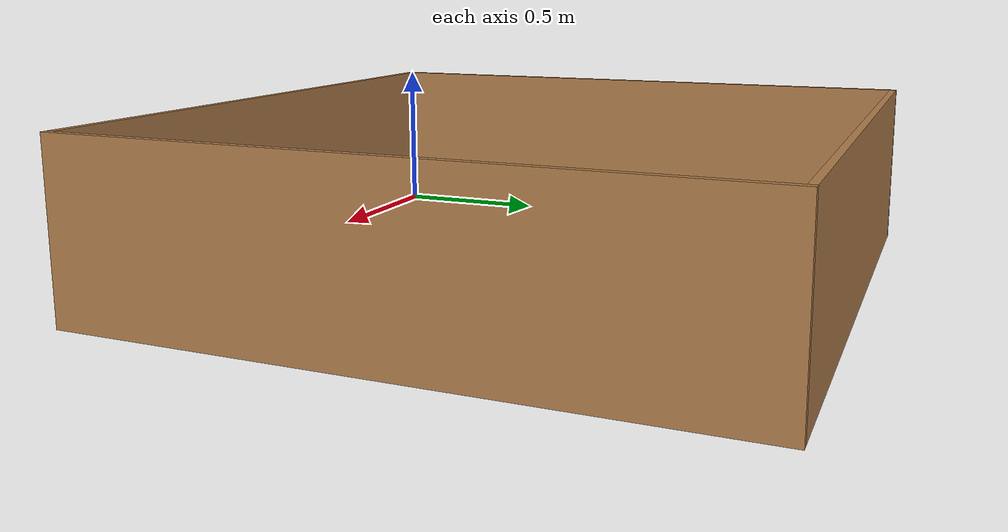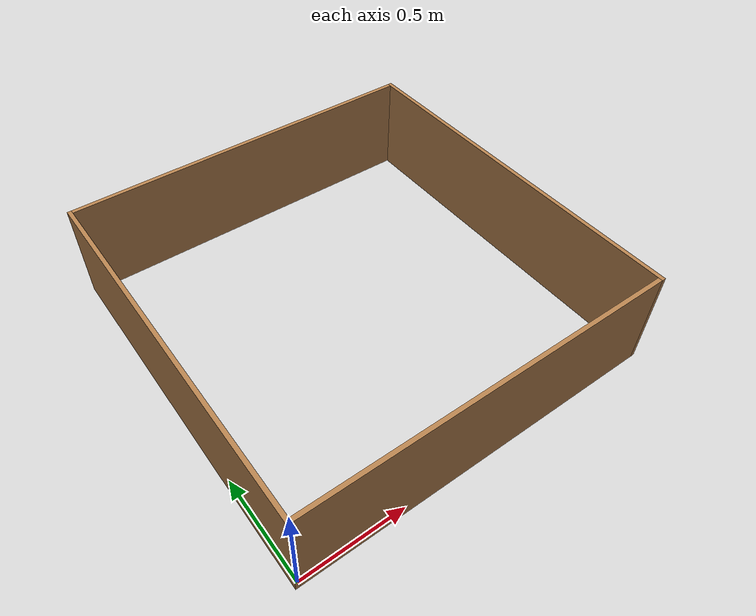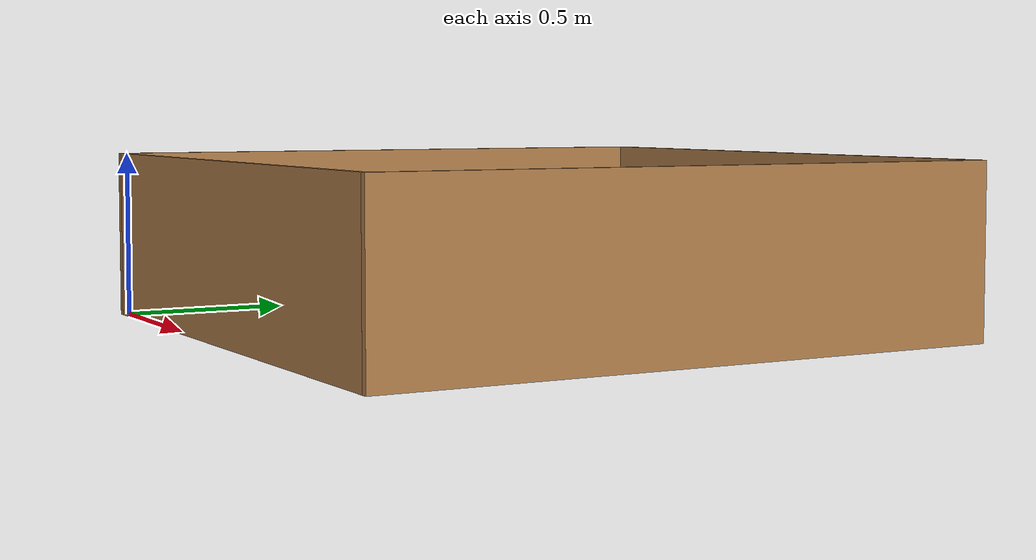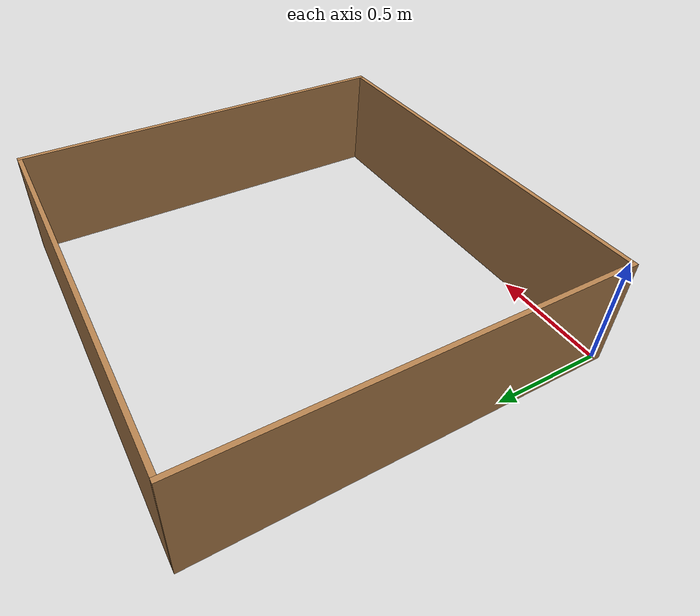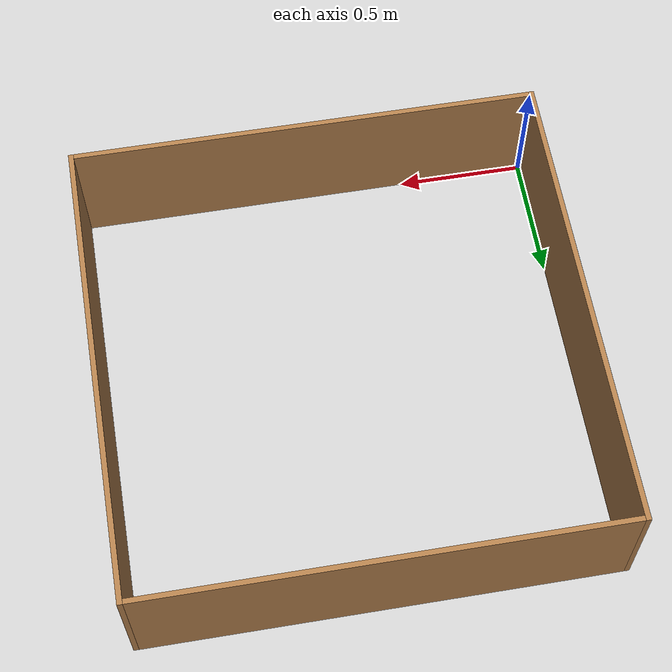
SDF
<?xml version='1.0'?>
<sdf version='1.6'>
  <model name='autonomous_robot_system_lab4'>
    <pose frame=''>0 0 0 0 -0 0</pose>
    <link name='Wall_0'>
      <collision name='Wall_0_Collision'>
        <geometry>
          <box>
            <size>1.8 0.02 0.5</size>
          </box>
        </geometry>
        <pose frame=''>0 0 0.25 0 -0 0</pose>
      </collision>
      <visual name='Wall_0_Visual'>
        <pose frame=''>0 0 0.25 0 -0 0</pose>
        <geometry>
          <box>
            <size>1.8 0.02 0.5</size>
          </box>
        </geometry>
        <material>
          <script>
            <uri>file://media/materials/scripts/gazebo.material</uri>
            <name>Gazebo/Wood</name>
          </script>
          <ambient>1 1 1 1</ambient>
        </material>
      </visual>
      <pose frame=''>0.9 1.81 0 0 -0 0</pose>
    </link>
    <link name='Wall_2'>
      <collision name='Wall_2_Collision'>
        <geometry>
          <box>
            <size>1.84 0.02 0.5</size>
          </box>
        </geometry>
        <pose frame=''>0 0 0.25 0 -0 0</pose>
      </collision>
      <visual name='Wall_2_Visual'>
        <pose frame=''>0 0 0.25 0 -0 0</pose>
        <geometry>
          <box>
            <size>1.84 0.02 0.5</size>
          </box>
        </geometry>
        <material>
          <script>
            <uri>file://media/materials/scripts/gazebo.material</uri>
            <name>Gazebo/Wood</name>
          </script>
          <ambient>1 1 1 1</ambient>
        </material>
      </visual>
      <pose frame=''>-0.01 0.9 0 0 0 -1.5708</pose>
    </link>
    <link name='Wall_3'>
      <collision name='Wall_3_Collision'>
        <geometry>
          <box>
            <size>1.8 0.02 0.5</size>
          </box>
        </geometry>
        <pose frame=''>0 0 0.25 0 -0 0</pose>
      </collision>
      <visual name='Wall_3_Visual'>
        <pose frame=''>0 0 0.25 0 -0 0</pose>
        <geometry>
          <box>
            <size>1.8 0.02 0.5</size>
          </box>
        </geometry>
        <material>
          <script>
            <uri>file://media/materials/scripts/gazebo.material</uri>
            <name>Gazebo/Wood</name>
          </script>
          <ambient>1 1 1 1</ambient>
        </material>
      </visual>
      <pose frame=''>0.9 -0.01 0 0 -0 0</pose>
    </link>
    <link name='Wall_4'>
      <collision name='Wall_4_Collision'>
        <geometry>
          <box>
            <size>1.84 0.02 0.5</size>
          </box>
        </geometry>
        <pose frame=''>0 0 0.25 0 -0 0</pose>
      </collision>
      <visual name='Wall_4_Visual'>
        <pose frame=''>0 0 0.25 0 -0 0</pose>
        <geometry>
          <box>
            <size>1.84 0.02 0.5</size>
          </box>
        </geometry>
        <material>
          <script>
            <uri>file://media/materials/scripts/gazebo.material</uri>
            <name>Gazebo/Wood</name>
          </script>
          <ambient>1 1 1 1</ambient>
        </material>
      </visual>
      <pose frame=''>1.81 0.9 0 0 -0 1.5708</pose>
    </link>
    <static>1</static>
  </model>
</sdf>
